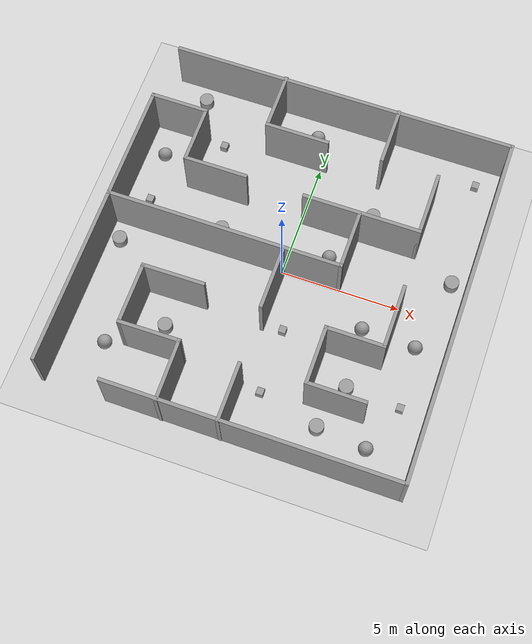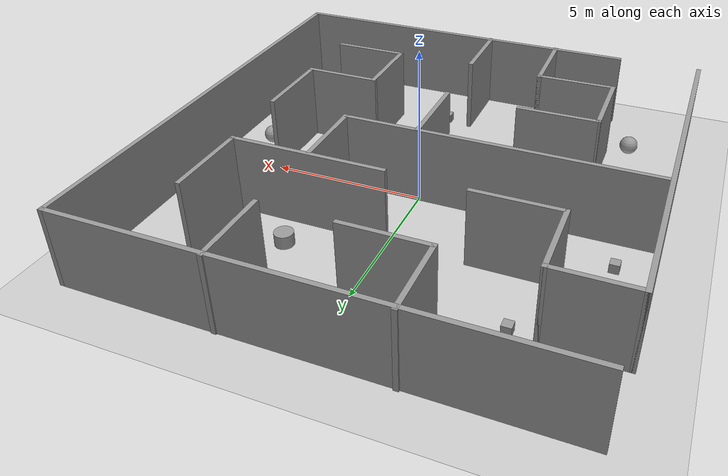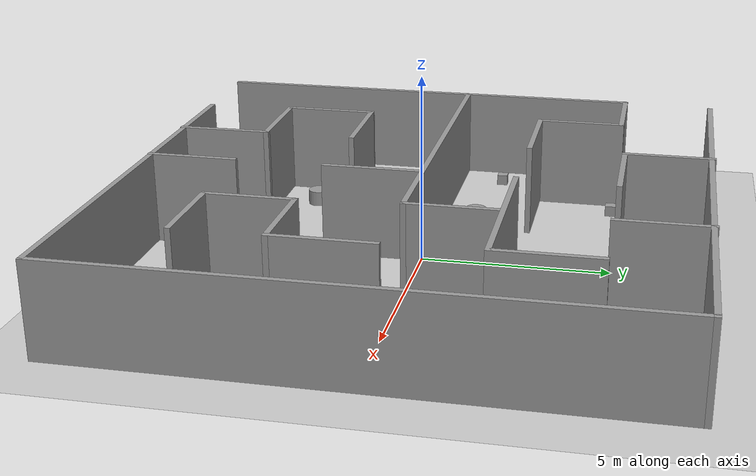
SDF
<?xml version="1.0"?>
<sdf version="1.4">
    <world name="default">
        <!-- A ground plane -->
        <include>
            <uri>model://ground_plane</uri>
        </include>

         <!-- A light source -->
        <include>
            <uri>model://sun</uri>
        </include>

        <!-- Custom world -->
        <include>
            <uri>model://task3_floor</uri>
        </include>
    </world>
</sdf>
